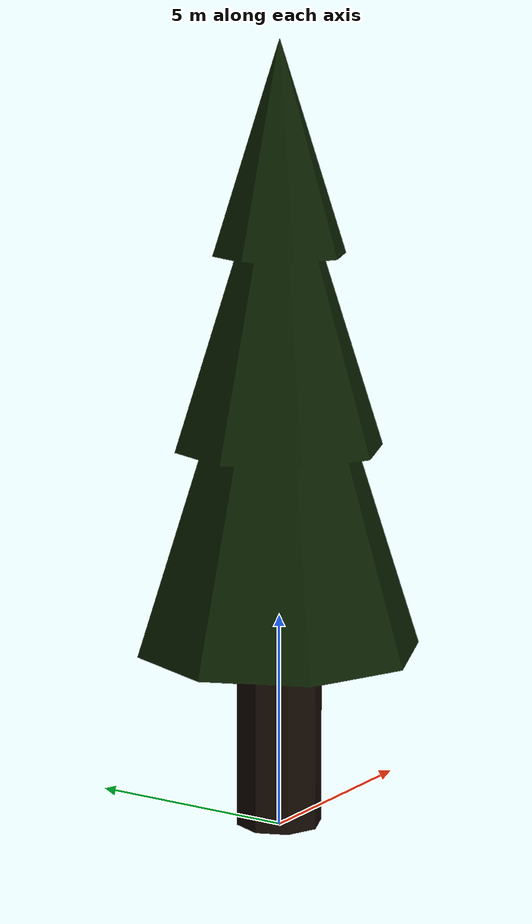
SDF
<sdf version="1.7">
<model name="lowpolytree_2">
    <static>true</static>
    <link name="lowpolytree_2">
        <pose>0 0 0 0 0 0</pose>
        <collision name="lowpolytree_2_collision">
            <geometry>
                <mesh>
                    <uri>model://lowpolytree_2/meshes/lowpolytree_2.dae</uri>
                </mesh>
            </geometry>
        </collision>
        <visual name="lowpolytree_2_visual">
            <geometry>
                <mesh>
                    <uri>model://lowpolytree_2/meshes/lowpolytree_2.dae</uri>
                </mesh>
            </geometry>
        </visual>
    </link>
</model>
</sdf>
